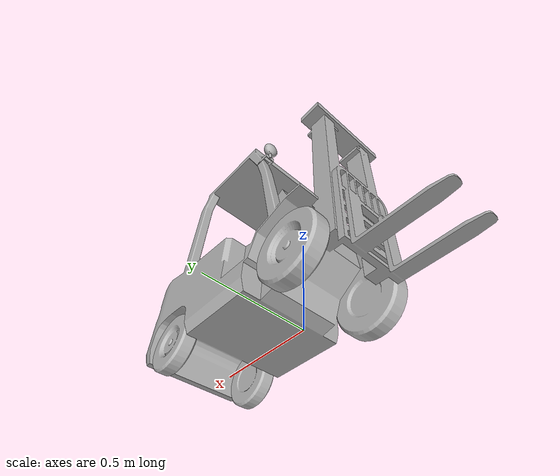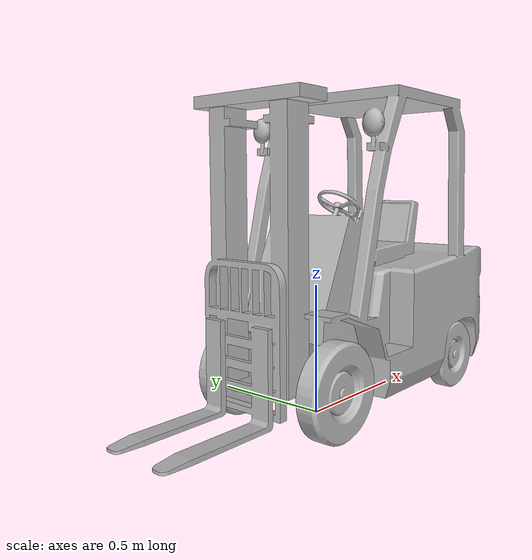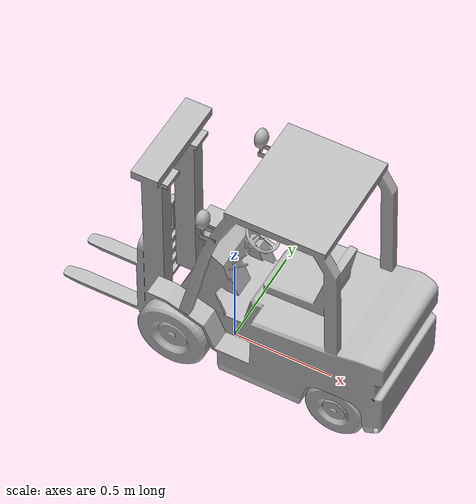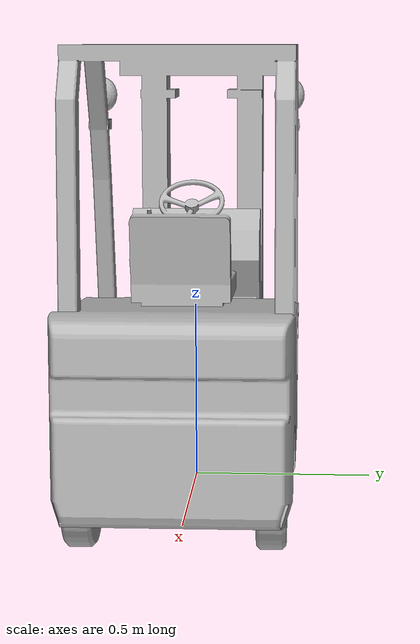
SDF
<?xml version='1.0'?>
<sdf version="1.4">
  <model name="forklift">
    <scale>1.2 1.2 1.2</scale>
    <pose>0 0 0 0 0 0</pose>
    <static>true</static>

    <link name="forklift_chassis">
      <pose>0 0 0   0 0 0</pose>
      <inertial>
        <mass>1.0</mass>
        <inertia>
          <ixx>100</ixx>
          <ixy>0.0</ixy>
          <ixz>0.0</ixz>
          <iyy>100</iyy>
          <iyz>0.0</iyz>
          <izz>100</izz>
        </inertia>
      </inertial>
      <collision name="collision_forklift">
        <geometry>
          <mesh>
            <uri>model://forklift/meshes/forklift_chassis.stl</uri>
            <scale>0.01 0.01 0.01</scale>
          </mesh>
        </geometry>
      </collision>
      <visual name="forklift_visual">
        <pose>0 0 0 0 0 0</pose>
        <geometry>
          <mesh>
            <uri>model://forklift/meshes/forklift_chassis.stl</uri>
            <scale>0.01 0.01 0.01</scale>
          </mesh>
        </geometry>
      </visual>

    </link>

    <link name="left_wheel">
      <pose>0 0 0   0 0 0</pose>
      <inertial>
        <mass>1.0</mass>
        <inertia>
          <ixx>100</ixx>
          <ixy>0.0</ixy>
          <ixz>0.0</ixz>
          <iyy>100</iyy>
          <iyz>0.0</iyz>
          <izz>100</izz>
        </inertia>
      </inertial>
      <collision name="collision_forkliftleft_wheel">
        <geometry>
          <mesh>
            <uri>model://forklift/meshes/forklift_left_wheel.stl</uri>
            <scale>0.01 0.01 0.01</scale>
          </mesh>
        </geometry>
      </collision>
      <visual name="forklift_visualleft_wheel">
        <pose>0 0 0 0 0 0</pose>
        <geometry>
          <mesh>
            <uri>model://forklift/meshes/forklift_left_wheel.stl</uri>
            <scale>0.01 0.01 0.01</scale>
          </mesh>
        </geometry>
      </visual>

    </link>

    <link name="right_wheel">
      <pose>0 0 0   0 0 0</pose>
      <inertial>
        <mass>1.0</mass>
        <inertia>
          <ixx>100</ixx>
          <ixy>0.0</ixy>
          <ixz>0.0</ixz>
          <iyy>100</iyy>
          <iyz>0.0</iyz>
          <izz>100</izz>
        </inertia>
      </inertial>
      <collision name="collision_right_wheel">
        <geometry>
          <mesh>
            <uri>model://forklift/meshes/forklift_right_wheel.stl</uri>
            <scale>0.01 0.01 0.01</scale>
          </mesh>
        </geometry>
      </collision>
      <visual name="visual_right_wheel">
        <pose>0 0 0 0 0 0</pose>
        <geometry>
          <mesh>
            <uri>model://forklift/meshes/forklift_right_wheel.stl</uri>
            <scale>0.01 0.01 0.01</scale>
          </mesh>
        </geometry>
      </visual>

    </link>

    <link name="back_wheel">
      <pose>0 0 0   0 0 0</pose>
      <inertial>
        <mass>1.0</mass>
        <inertia>
          <ixx>100</ixx>
          <ixy>0.0</ixy>
          <ixz>0.0</ixz>
          <iyy>100</iyy>
          <iyz>0.0</iyz>
          <izz>100</izz>
        </inertia>
      </inertial>
      <collision name="collision_back_wheel">
        <geometry>
          <mesh>
            <uri>model://forklift/meshes/forklift_back_wheel.stl</uri>
            <scale>0.01 0.01 0.01</scale>
          </mesh>
        </geometry>
      </collision>
      <visual name="collision_back_wheel">
        <pose>0 0 0 0 0 0</pose>
        <geometry>
          <mesh>
            <uri>model://forklift/meshes/forklift_back_wheel.stl</uri>
            <scale>0.01 0.01 0.01</scale>
          </mesh>
        </geometry>
      </visual>
    </link>

    <joint name="base_joint" type="fixed">
      <parent>main_base</parent>
      <child>forklift_chassis</child>
      <pose>0.0 0.0 0 0 0 0</pose>
    </joint>

    <joint name="left_wheel_joint" type="fixed">
      <parent>forklift_chassis</parent>
      <child>left_wheel</child>
      <pose>0.0 0.0 0 0 0 0</pose>
    </joint>

    <joint name="right_wheel_joint" type="revolute">
      <parent>forklift_chassis</parent>
      <child>right_wheel</child>
      <pose>0.0 0 0 0 0 0</pose>
      <axis>
        <xyz>0 0 1</xyz>
      </axis>
    </joint>

    <joint name="back_wheel_joint" type="revolute">
      <parent>forklift_chassis</parent>
      <child>back_wheel</child>
      <pose>0.0 0 0 0 0 0</pose>
      <axis>
        <xyz>0 0 1</xyz>
      </axis>
    </joint>

    <plugin name="forklift_diff_drive" filename="libgazebo_ros_diff_drive.so">

      <ros>
        <namespace>/forklift</namespace>
      </ros>

      <update_rate>30</update_rate>

      <!-- wheels -->
      <left_joint>left_wheel_joint</left_joint>
      <right_joint>right_wheel_joint</right_joint>

      <!-- kinematics -->
      <wheel_separation>0.160</wheel_separation>
      <wheel_diameter>0.066</wheel_diameter>

      <!-- limits -->
      <max_wheel_torque>20</max_wheel_torque>
      <max_wheel_acceleration>1.0</max_wheel_acceleration>

      <command_topic>cmd_vel</command_topic>

      <!-- output -->
      <publish_odom>true</publish_odom>
      <publish_odom_tf>true</publish_odom_tf>
      <publish_wheel_tf>false</publish_wheel_tf>

      <odometry_topic>odom</odometry_topic>
      <odometry_frame>odom</odometry_frame>
      <robot_base_frame>forklift_chassis</robot_base_frame>

    </plugin>

    <plugin name="forklift_joint_state" filename="libgazebo_ros_joint_state_publisher.so">
      <ros>
        <namespace>/forklift</namespace>
        <remapping>~/out:=joint_states</remapping>
      </ros>
      <update_rate>30</update_rate>
      <joint_name>left_wheel_joint</joint_name>
      <joint_name>right_wheel_joint</joint_name>
    </plugin>

  </model>
</sdf>
